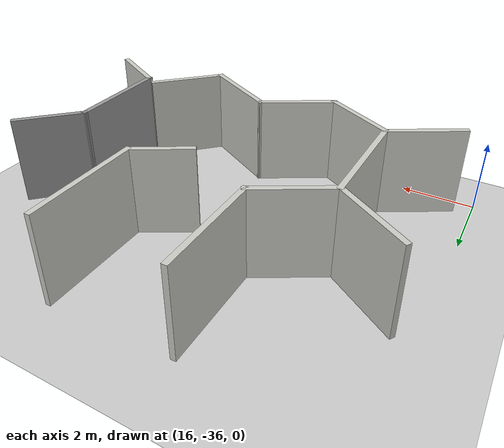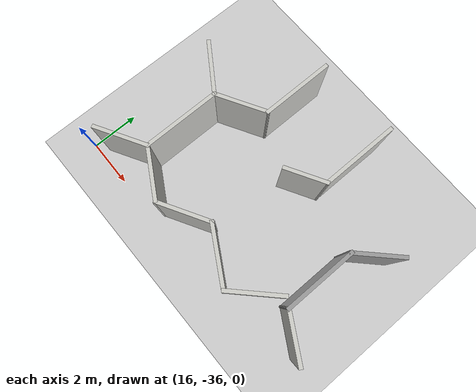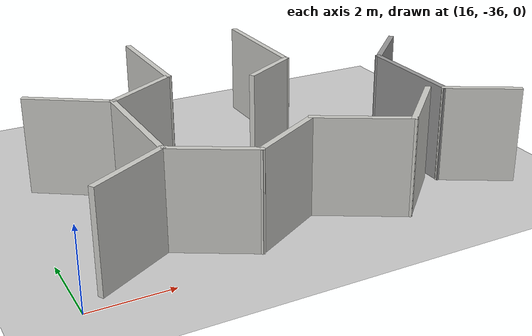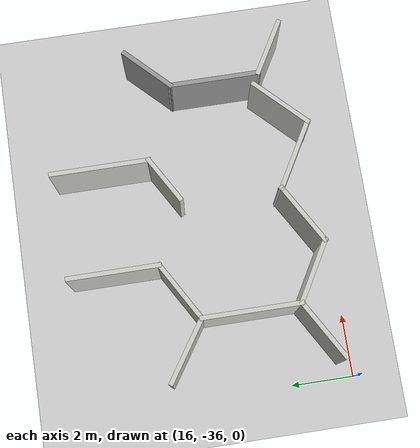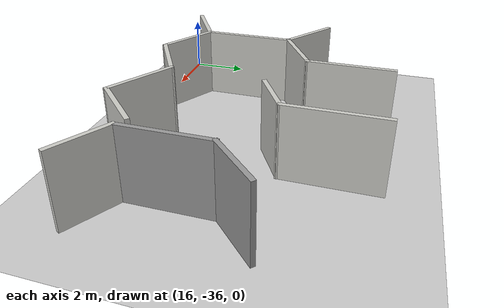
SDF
<sdf version="1.6">
 <world name="default">
  <model name="ground_plane">
   <pose>50 50 0 0 -0 0</pose>
   <static>1</static>
   <link name="link">
    <collision name="collision">
     <geometry><plane><normal>0 0 1</normal><size>100 100</size></plane></geometry>
     <surface><friction><ode><mu>100</mu><mu2>50</mu2></ode></friction></surface>
    </collision>
    <visual name="visual">
     <cast_shadows>0</cast_shadows>
     <geometry><plane><normal>0 0 1</normal><size>100 100</size></plane></geometry>
     <material>
      <script><uri>file://media/materials/scripts/gazebo.material</uri><name>Gazebo/Grey</name></script>
     </material>
    </visual>
   </link>
  </model>
  <model name="maze_1">
   <pose>17.3845 3.82743 0 0 -0 1.57331</pose>
   <link name="Wall_50">
    <collision name="Wall_50_Collision">
     <geometry><box><size>2 0.15 2.5</size></box></geometry>
     <pose>0 0 1.25 0 -0 0</pose>
    </collision>
    <visual name="Wall_50_Visual">
     <pose>0 0 1.25 0 -0 0</pose>
     <geometry><box><size>2 0.15 2.5</size></box></geometry>
     <material>
      <script><uri>file://media/materials/scripts/gazebo.material</uri><name>Gazebo/CeilingTiled</name></script>
      <ambient>1 1 1 1</ambient>
     </material>
     <meta><layer>0</layer></meta>
    </visual>
    <pose>-38.6831 -9.20886 0 0 -0 1.0472</pose>
   </link>
   <link name="Wall_51">
    <collision name="Wall_51_Collision">
     <geometry><box><size>3 0.15 2.5</size></box></geometry>
     <pose>0 0 1.25 0 -0 0</pose>
    </collision>
    <visual name="Wall_51_Visual">
     <pose>0 0 1.25 0 -0 0</pose>
     <geometry><box><size>3 0.15 2.5</size></box></geometry>
     <material>
      <script><uri>file://media/materials/scripts/gazebo.material</uri><name>Gazebo/Grey</name></script>
      <ambient>1 1 1 1</ambient>
     </material>
     <meta><layer>0</layer></meta>
    </visual>
    <pose>-36.7956 -8.40778 0 0 -0 0</pose>
   </link>
   <link name="Wall_52">
    <collision name="Wall_52_Collision">
     <geometry><box><size>2 0.15 2.5</size></box></geometry>
     <pose>0 0 1.25 0 -0 0</pose>
    </collision>
    <visual name="Wall_52_Visual">
     <pose>0 0 1.25 0 -0 0</pose>
     <geometry><box><size>2 0.15 2.5</size></box></geometry>
     <material>
      <script><uri>file://media/materials/scripts/gazebo.material</uri><name>Gazebo/Grey</name></script>
      <ambient>1 1 1 1</ambient>
     </material>
     <meta><layer>0</layer></meta>
    </visual>
    <pose>-34.7166 -9.06186 0 0 -0 -0.785398</pose>
   </link>
   <link name="Wall_61">
    <collision name="Wall_61_Collision">
     <geometry><box><size>2.25 0.15 2.5</size></box></geometry>
     <pose>0 0 1.25 0 -0 0</pose>
    </collision>
    <visual name="Wall_61_Visual">
     <pose>0 0 1.25 0 -0 0</pose>
     <geometry><box><size>2.25 0.15 2.5</size></box></geometry>
     <material>
      <script><uri>file://media/materials/scripts/gazebo.material</uri><name>Gazebo/CeilingTiled</name></script>
      <ambient>1 1 1 1</ambient>
     </material>
     <meta><layer>0</layer></meta>
    </visual>
    <pose>-38.7606 -7.30854 0 0 -0 2.35619</pose>
   </link>
   <link name="Wall_62">
    <collision name="Wall_62_Collision">
     <geometry><box><size>2.5 0.15 2.5</size></box></geometry>
     <pose>0 0 1.25 0 -0 0</pose>
    </collision>
    <visual name="Wall_62_Visual">
     <pose>0 0 1.25 0 -0 0</pose>
     <geometry><box><size>2.5 0.15 2.5</size></box></geometry>
     <material>
      <script><uri>file://media/materials/scripts/gazebo.material</uri><name>Gazebo/CeilingTiled</name></script>
      <ambient>1 1 1 1</ambient>
     </material>
     <meta><layer>0</layer></meta>
    </visual>
    <pose>-38.9155 -5.5485 0 0 -0 1.0472</pose>
   </link>
   <link name="Wall_63">
    <collision name="Wall_63_Collision">
     <geometry><box><size>2.25 0.15 2.5</size></box></geometry>
     <pose>0 0 1.25 0 -0 0</pose>
    </collision>
    <visual name="Wall_63_Visual">
     <pose>0 0 1.25 0 -0 0</pose>
     <geometry><box><size>2.25 0.15 2.5</size></box></geometry>
     <material>
      <script><uri>file://media/materials/scripts/gazebo.material</uri><name>Gazebo/CeilingTiled</name></script>
      <ambient>1 1 1 1</ambient>
     </material>
     <meta><layer>0</layer></meta>
    </visual>
    <pose>-38.853 -3.6216 0 0 -0 2.0944</pose>
   </link>
   <link name="Wall_64">
    <collision name="Wall_64_Collision">
     <geometry><box><size>2.25 0.15 2.5</size></box></geometry>
     <pose>0 0 1.25 0 -0 0</pose>
    </collision>
    <visual name="Wall_64_Visual">
     <pose>0 0 1.25 0 -0 0</pose>
     <geometry><box><size>2.25 0.15 2.5</size></box></geometry>
     <material>
      <script><uri>file://media/materials/scripts/gazebo.material</uri><name>Gazebo/CeilingTiled</name></script>
      <ambient>1 1 1 1</ambient>
     </material>
     <meta><layer>0</layer></meta>
    </visual>
    <pose>-38.853 -1.80294 0 0 -0 1.0472</pose>
   </link>
   <link name="Wall_65">
    <collision name="Wall_65_Collision">
     <geometry><box><size>3.25 0.15 2.5</size></box></geometry>
     <pose>0 0 1.25 0 -0 0</pose>
    </collision>
    <visual name="Wall_65_Visual">
     <pose>0 0 1.25 0 -0 0</pose>
     <geometry><box><size>3.25 0.15 2.5</size></box></geometry>
     <material>
      <script><uri>file://media/materials/scripts/gazebo.material</uri><name>Gazebo/CeilingTiled</name></script>
      <ambient>1 1 1 1</ambient>
     </material>
     <meta><layer>0</layer></meta>
    </visual>
    <pose>-36.778 -0.893615 0 0 -0 0</pose>
   </link>
   <link name="Wall_66">
    <collision name="Wall_66_Collision">
     <geometry><box><size>2.25 0.15 2.5</size></box></geometry>
     <pose>0 0 1.25 0 -0 0</pose>
    </collision>
    <visual name="Wall_66_Visual">
     <pose>0 0 1.25 0 -0 0</pose>
     <geometry><box><size>2.25 0.15 2.5</size></box></geometry>
     <material>
      <script><uri>file://media/materials/scripts/gazebo.material</uri><name>Gazebo/CeilingTiled</name></script>
      <ambient>1 1 1 1</ambient>
     </material>
     <meta><layer>0</layer></meta>
    </visual>
    <pose>-34.703 -1.80294 0 0 -0 -1.0472</pose>
   </link>
   <link name="Wall_67">
    <collision name="Wall_67_Collision">
     <geometry><box><size>3 0.15 2.5</size></box></geometry>
     <pose>0 0 1.25 0 -0 0</pose>
    </collision>
    <visual name="Wall_67_Visual">
     <pose>0 0 1.25 0 -0 0</pose>
     <geometry><box><size>3 0.15 2.5</size></box></geometry>
     <material>
      <script><uri>file://media/materials/scripts/gazebo.material</uri><name>Gazebo/CeilingTiled</name></script>
      <ambient>1 1 1 1</ambient>
     </material>
     <meta><layer>0</layer></meta>
    </visual>
    <pose>-32.753 -2.71227 0 0 -0 0</pose>
   </link>
   <link name="Wall_69">
    <collision name="Wall_69_Collision">
     <geometry><box><size>2.3062 0.15 2.5</size></box></geometry>
     <pose>0 0 1.25 0 -0 0</pose>
    </collision>
    <visual name="Wall_69_Visual">
     <pose>0 0 1.25 0 -0 0</pose>
     <geometry><box><size>2.3062 0.15 2.5</size></box></geometry>
     <material>
      <script><uri>file://media/materials/scripts/gazebo.material</uri><name>Gazebo/CeilingTiled</name></script>
      <ambient>1 1 1 1</ambient>
     </material>
     <meta><layer>0</layer></meta>
    </visual>
    <pose>-34.6295 0.003073 0 0 -0 -2.15938</pose>
   </link>
   <link name="Wall_71">
    <collision name="Wall_71_Collision">
     <geometry><box><size>2.25 0.15 2.5</size></box></geometry>
     <pose>0 0 1.25 0 -0 0</pose>
    </collision>
    <visual name="Wall_71_Visual">
     <pose>0 0 1.25 0 -0 0</pose>
     <geometry><box><size>2.25 0.15 2.5</size></box></geometry>
     <material>
      <script><uri>file://media/materials/scripts/gazebo.material</uri><name>Gazebo/CeilingTiled</name></script>
      <ambient>1 1 1 1</ambient>
     </material>
     <meta><layer>0</layer></meta>
    </visual>
    <pose>-38.853 0.015712 0 0 -0 2.0944</pose>
   </link>
   <link name="Wall_93">
    <collision name="Wall_93_Collision">
     <geometry><box><size>3.25 0.15 2.5</size></box></geometry>
     <pose>0 0 1.25 0 -0 0</pose>
    </collision>
    <visual name="Wall_93_Visual">
     <pose>0 0 1.25 0 -0 0</pose>
     <geometry><box><size>3.25 0.15 2.5</size></box></geometry>
     <material>
      <script><uri>file://media/materials/scripts/gazebo.material</uri><name>Gazebo/CeilingTiled</name></script>
      <ambient>1 1 1 1</ambient>
     </material>
     <meta><layer>0</layer></meta>
    </visual>
    <pose>-32.7809 -6.07151 0 0 -0 3.14159</pose>
   </link>
   <link name="Wall_94">
    <collision name="Wall_94_Collision">
     <geometry><box><size>1.75 0.15 2.5</size></box></geometry>
     <pose>0 0 1.25 0 -0 0</pose>
    </collision>
    <visual name="Wall_94_Visual">
     <pose>0 0 1.25 0 -0 0</pose>
     <geometry><box><size>1.75 0.15 2.5</size></box></geometry>
     <material>
      <script><uri>file://media/materials/scripts/gazebo.material</uri><name>Gazebo/CeilingTiled</name></script>
      <ambient>1 1 1 1</ambient>
     </material>
     <meta><layer>0</layer></meta>
    </visual>
    <pose>-34.7309 -5.37869 0 0 -0 2.0944</pose>
   </link>
   <static>1</static>
  </model>
 </world>
</sdf>
